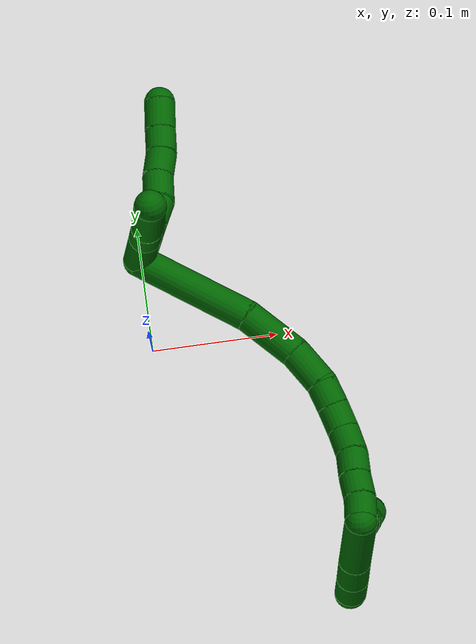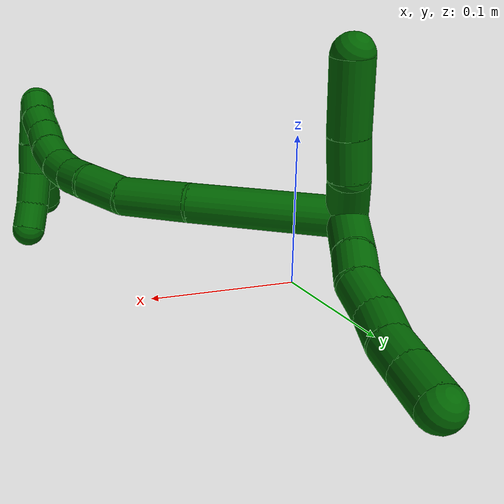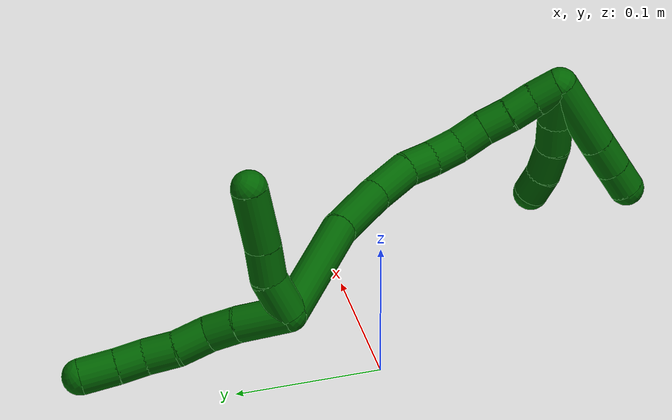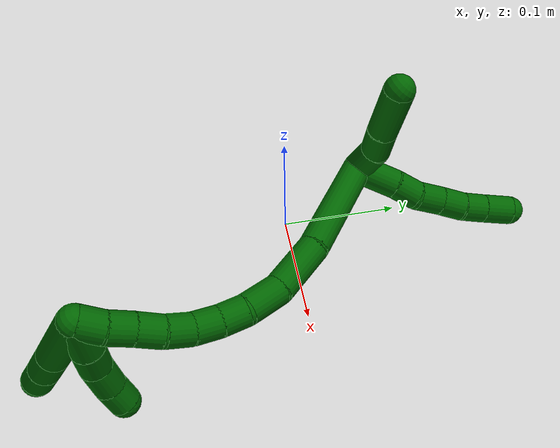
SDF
<sdf version="1.7">
 <world name="default">
  <model name="6">
   <static>0</static>
   <link name="6">
    <collision name="collision-cylinder-e_1_2_8">
     <pose>0.00503 0.016662 0.005199 -1.26833 0.280594 -0.207004</pose>
     <geometry><cylinder><radius>0.0125</radius><length>0.036331</length></cylinder></geometry>
     <surface>
      <friction><ode><mu>1.16</mu><mu2>1.16</mu2><slip1>0</slip1><slip2>0</slip2></ode></friction>
      <contact><ode><kp>1e+06</kp><kd>1</kd><max_vel>0</max_vel><min_depth>0.001</min_depth></ode></contact>
     </surface>
    </collision>
    <visual name="visual-cylinder-e_1_2_8">
     <pose>0.00503 0.016662 0.005199 -1.26833 0.280594 -0.207004</pose>
     <geometry><cylinder><radius>0.0125</radius><length>0.036331</length></cylinder></geometry>
     <material><ambient>0 0.392157 0.003922 1</ambient></material>
    </visual>
    <collision name="collision-cylinder-e_2_8_9">
     <pose>0.012926 0.043748 0.012328 -1.38774 0.263948 -0.219961</pose>
     <geometry><cylinder><radius>0.0125</radius><length>0.021961</length></cylinder></geometry>
     <surface>
      <friction><ode><mu>1.16</mu><mu2>1.16</mu2><slip1>0</slip1><slip2>0</slip2></ode></friction>
      <contact><ode><kp>1e+06</kp><kd>1</kd><max_vel>0</max_vel><min_depth>0.001</min_depth></ode></contact>
     </surface>
    </collision>
    <visual name="visual-cylinder-e_2_8_9">
     <pose>0.012926 0.043748 0.012328 -1.38774 0.263948 -0.219961</pose>
     <geometry><cylinder><radius>0.0125</radius><length>0.021961</length></cylinder></geometry>
     <material><ambient>0 0.392157 0.003922 1</ambient></material>
    </visual>
    <collision name="collision-cylinder-e_3_9_10">
     <pose>0.015431 0.065604 0.017733 -1.27569 -0.030062 0.022283</pose>
     <geometry><cylinder><radius>0.0125</radius><length>0.023911</length></cylinder></geometry>
     <surface>
      <friction><ode><mu>1.16</mu><mu2>1.16</mu2><slip1>0</slip1><slip2>0</slip2></ode></friction>
      <contact><ode><kp>1e+06</kp><kd>1</kd><max_vel>0</max_vel><min_depth>0.001</min_depth></ode></contact>
     </surface>
    </collision>
    <visual name="visual-cylinder-e_3_9_10">
     <pose>0.015431 0.065604 0.017733 -1.27569 -0.030062 0.022283</pose>
     <geometry><cylinder><radius>0.0125</radius><length>0.023911</length></cylinder></geometry>
     <material><ambient>0 0.392157 0.003922 1</ambient></material>
    </visual>
    <collision name="collision-cylinder-e_4_10_11">
     <pose>0.016715 0.087096 0.025211 -1.19205 0.15062 -0.102272</pose>
     <geometry><cylinder><radius>0.0125</radius><length>0.021898</length></cylinder></geometry>
     <surface>
      <friction><ode><mu>1.16</mu><mu2>1.16</mu2><slip1>0</slip1><slip2>0</slip2></ode></friction>
      <contact><ode><kp>1e+06</kp><kd>1</kd><max_vel>0</max_vel><min_depth>0.001</min_depth></ode></contact>
     </surface>
    </collision>
    <visual name="visual-cylinder-e_4_10_11">
     <pose>0.016715 0.087096 0.025211 -1.19205 0.15062 -0.102272</pose>
     <geometry><cylinder><radius>0.0125</radius><length>0.021898</length></cylinder></geometry>
     <material><ambient>0 0.392157 0.003922 1</ambient></material>
    </visual>
    <collision name="collision-cylinder-e_5_11_12">
     <pose>0.018215 0.106305 0.033586 -1.12517 -0.014058 0.008865</pose>
     <geometry><cylinder><radius>0.0125</radius><length>0.020286</length></cylinder></geometry>
     <surface>
      <friction><ode><mu>1.16</mu><mu2>1.16</mu2><slip1>0</slip1><slip2>0</slip2></ode></friction>
      <contact><ode><kp>1e+06</kp><kd>1</kd><max_vel>0</max_vel><min_depth>0.001</min_depth></ode></contact>
     </surface>
    </collision>
    <visual name="visual-cylinder-e_5_11_12">
     <pose>0.018215 0.106305 0.033586 -1.12517 -0.014058 0.008865</pose>
     <geometry><cylinder><radius>0.0125</radius><length>0.020286</length></cylinder></geometry>
     <material><ambient>0 0.392157 0.003922 1</ambient></material>
    </visual>
    <collision name="collision-cylinder-e_6_12_6">
     <pose>0.018247 0.126749 0.043996 -1.07968 0.013678 -0.008196</pose>
     <geometry><cylinder><radius>0.0125</radius><length>0.025614</length></cylinder></geometry>
     <surface>
      <friction><ode><mu>1.16</mu><mu2>1.16</mu2><slip1>0</slip1><slip2>0</slip2></ode></friction>
      <contact><ode><kp>1e+06</kp><kd>1</kd><max_vel>0</max_vel><min_depth>0.001</min_depth></ode></contact>
     </surface>
    </collision>
    <visual name="visual-cylinder-e_6_12_6">
     <pose>0.018247 0.126749 0.043996 -1.07968 0.013678 -0.008196</pose>
     <geometry><cylinder><radius>0.0125</radius><length>0.025614</length></cylinder></geometry>
     <material><ambient>0 0.392157 0.003922 1</ambient></material>
    </visual>
    <collision name="collision-cylinder-e_1_2_13">
     <pose>0.004694 -0.003477 0.013563 0.250961 0.323497 0.041161</pose>
     <geometry><cylinder><radius>0.0125</radius><length>0.029535</length></cylinder></geometry>
     <surface>
      <friction><ode><mu>1.16</mu><mu2>1.16</mu2><slip1>0</slip1><slip2>0</slip2></ode></friction>
      <contact><ode><kp>1e+06</kp><kd>1</kd><max_vel>0</max_vel><min_depth>0.001</min_depth></ode></contact>
     </surface>
    </collision>
    <visual name="visual-cylinder-e_1_2_13">
     <pose>0.004694 -0.003477 0.013563 0.250961 0.323497 0.041161</pose>
     <geometry><cylinder><radius>0.0125</radius><length>0.029535</length></cylinder></geometry>
     <material><ambient>0 0.392157 0.003922 1</ambient></material>
    </visual>
    <collision name="collision-cylinder-e_2_13_14">
     <pose>0.012427 -0.013817 0.037403 0.588794 0.24111 0.07343</pose>
     <geometry><cylinder><radius>0.0125</radius><length>0.025453</length></cylinder></geometry>
     <surface>
      <friction><ode><mu>1.16</mu><mu2>1.16</mu2><slip1>0</slip1><slip2>0</slip2></ode></friction>
      <contact><ode><kp>1e+06</kp><kd>1</kd><max_vel>0</max_vel><min_depth>0.001</min_depth></ode></contact>
     </surface>
    </collision>
    <visual name="visual-cylinder-e_2_13_14">
     <pose>0.012427 -0.013817 0.037403 0.588794 0.24111 0.07343</pose>
     <geometry><cylinder><radius>0.0125</radius><length>0.025453</length></cylinder></geometry>
     <material><ambient>0 0.392157 0.003922 1</ambient></material>
    </visual>
    <collision name="collision-cylinder-e_3_14_5">
     <pose>0.020185 -0.031839 0.066647 0.531769 0.211221 0.057721</pose>
     <geometry><cylinder><radius>0.0125</radius><length>0.045013</length></cylinder></geometry>
     <surface>
      <friction><ode><mu>1.16</mu><mu2>1.16</mu2><slip1>0</slip1><slip2>0</slip2></ode></friction>
      <contact><ode><kp>1e+06</kp><kd>1</kd><max_vel>0</max_vel><min_depth>0.001</min_depth></ode></contact>
     </surface>
    </collision>
    <visual name="visual-cylinder-e_3_14_5">
     <pose>0.020185 -0.031839 0.066647 0.531769 0.211221 0.057721</pose>
     <geometry><cylinder><radius>0.0125</radius><length>0.045013</length></cylinder></geometry>
     <material><ambient>0 0.392157 0.003922 1</ambient></material>
    </visual>
    <collision name="collision-cylinder-e_1_2_15">
     <pose>0.040548 -0.016899 -0.019022 2.41523 1.0104 1.93751</pose>
     <geometry><cylinder><radius>0.0125</radius><length>0.09574</length></cylinder></geometry>
     <surface>
      <friction><ode><mu>1.16</mu><mu2>1.16</mu2><slip1>0</slip1><slip2>0</slip2></ode></friction>
      <contact><ode><kp>1e+06</kp><kd>1</kd><max_vel>0</max_vel><min_depth>0.001</min_depth></ode></contact>
     </surface>
    </collision>
    <visual name="visual-cylinder-e_1_2_15">
     <pose>0.040548 -0.016899 -0.019022 2.41523 1.0104 1.93751</pose>
     <geometry><cylinder><radius>0.0125</radius><length>0.09574</length></cylinder></geometry>
     <material><ambient>0 0.392157 0.003922 1</ambient></material>
    </visual>
    <collision name="collision-cylinder-e_2_15_16">
     <pose>0.098345 -0.04432 -0.05012 2.42484 0.822417 1.72228</pose>
     <geometry><cylinder><radius>0.0125</radius><length>0.047079</length></cylinder></geometry>
     <surface>
      <friction><ode><mu>1.16</mu><mu2>1.16</mu2><slip1>0</slip1><slip2>0</slip2></ode></friction>
      <contact><ode><kp>1e+06</kp><kd>1</kd><max_vel>0</max_vel><min_depth>0.001</min_depth></ode></contact>
     </surface>
    </collision>
    <visual name="visual-cylinder-e_2_15_16">
     <pose>0.098345 -0.04432 -0.05012 2.42484 0.822417 1.72228</pose>
     <geometry><cylinder><radius>0.0125</radius><length>0.047079</length></cylinder></geometry>
     <material><ambient>0 0.392157 0.003922 1</ambient></material>
    </visual>
    <collision name="collision-cylinder-e_3_16_17">
     <pose>0.125069 -0.065719 -0.069623 2.16989 0.623617 1.09604</pose>
     <geometry><cylinder><radius>0.0125</radius><length>0.032449</length></cylinder></geometry>
     <surface>
      <friction><ode><mu>1.16</mu><mu2>1.16</mu2><slip1>0</slip1><slip2>0</slip2></ode></friction>
      <contact><ode><kp>1e+06</kp><kd>1</kd><max_vel>0</max_vel><min_depth>0.001</min_depth></ode></contact>
     </surface>
    </collision>
    <visual name="visual-cylinder-e_3_16_17">
     <pose>0.125069 -0.065719 -0.069623 2.16989 0.623617 1.09604</pose>
     <geometry><cylinder><radius>0.0125</radius><length>0.032449</length></cylinder></geometry>
     <material><ambient>0 0.392157 0.003922 1</ambient></material>
    </visual>
    <collision name="collision-cylinder-e_4_17_18">
     <pose>0.138258 -0.084038 -0.083316 2.27065 0.364658 0.754602</pose>
     <geometry><cylinder><radius>0.0125</radius><length>0.020827</length></cylinder></geometry>
     <surface>
      <friction><ode><mu>1.16</mu><mu2>1.16</mu2><slip1>0</slip1><slip2>0</slip2></ode></friction>
      <contact><ode><kp>1e+06</kp><kd>1</kd><max_vel>0</max_vel><min_depth>0.001</min_depth></ode></contact>
     </surface>
    </collision>
    <visual name="visual-cylinder-e_4_17_18">
     <pose>0.138258 -0.084038 -0.083316 2.27065 0.364658 0.754602</pose>
     <geometry><cylinder><radius>0.0125</radius><length>0.020827</length></cylinder></geometry>
     <material><ambient>0 0.392157 0.003922 1</ambient></material>
    </visual>
    <collision name="collision-cylinder-e_5_18_19">
     <pose>0.145407 -0.100101 -0.094846 2.11894 0.327857 0.573357</pose>
     <geometry><cylinder><radius>0.0125</radius><length>0.021338</length></cylinder></geometry>
     <surface>
      <friction><ode><mu>1.16</mu><mu2>1.16</mu2><slip1>0</slip1><slip2>0</slip2></ode></friction>
      <contact><ode><kp>1e+06</kp><kd>1</kd><max_vel>0</max_vel><min_depth>0.001</min_depth></ode></contact>
     </surface>
    </collision>
    <visual name="visual-cylinder-e_5_18_19">
     <pose>0.145407 -0.100101 -0.094846 2.11894 0.327857 0.573357</pose>
     <geometry><cylinder><radius>0.0125</radius><length>0.021338</length></cylinder></geometry>
     <material><ambient>0 0.392157 0.003922 1</ambient></material>
    </visual>
    <collision name="collision-cylinder-e_6_19_20">
     <pose>0.151628 -0.118572 -0.103273 1.8815 0.262938 0.358785</pose>
     <geometry><cylinder><radius>0.0125</radius><length>0.021428</length></cylinder></geometry>
     <surface>
      <friction><ode><mu>1.16</mu><mu2>1.16</mu2><slip1>0</slip1><slip2>0</slip2></ode></friction>
      <contact><ode><kp>1e+06</kp><kd>1</kd><max_vel>0</max_vel><min_depth>0.001</min_depth></ode></contact>
     </surface>
    </collision>
    <visual name="visual-cylinder-e_6_19_20">
     <pose>0.151628 -0.118572 -0.103273 1.8815 0.262938 0.358785</pose>
     <geometry><cylinder><radius>0.0125</radius><length>0.021428</length></cylinder></geometry>
     <material><ambient>0 0.392157 0.003922 1</ambient></material>
    </visual>
    <collision name="collision-cylinder-e_7_20_21">
     <pose>0.155116 -0.13827 -0.109398 1.86301 0.068295 0.091834</pose>
     <geometry><cylinder><radius>0.0125</radius><length>0.020614</length></cylinder></geometry>
     <surface>
      <friction><ode><mu>1.16</mu><mu2>1.16</mu2><slip1>0</slip1><slip2>0</slip2></ode></friction>
      <contact><ode><kp>1e+06</kp><kd>1</kd><max_vel>0</max_vel><min_depth>0.001</min_depth></ode></contact>
     </surface>
    </collision>
    <visual name="visual-cylinder-e_7_20_21">
     <pose>0.155116 -0.13827 -0.109398 1.86301 0.068295 0.091834</pose>
     <geometry><cylinder><radius>0.0125</radius><length>0.020614</length></cylinder></geometry>
     <material><ambient>0 0.392157 0.003922 1</ambient></material>
    </visual>
    <collision name="collision-cylinder-e_8_21_22">
     <pose>0.157412 -0.15784 -0.114893 1.82567 0.157212 0.203139</pose>
     <geometry><cylinder><radius>0.0125</radius><length>0.020346</length></cylinder></geometry>
     <surface>
      <friction><ode><mu>1.16</mu><mu2>1.16</mu2><slip1>0</slip1><slip2>0</slip2></ode></friction>
      <contact><ode><kp>1e+06</kp><kd>1</kd><max_vel>0</max_vel><min_depth>0.001</min_depth></ode></contact>
     </surface>
    </collision>
    <visual name="visual-cylinder-e_8_21_22">
     <pose>0.157412 -0.15784 -0.114893 1.82567 0.157212 0.203139</pose>
     <geometry><cylinder><radius>0.0125</radius><length>0.020346</length></cylinder></geometry>
     <material><ambient>0 0.392157 0.003922 1</ambient></material>
    </visual>
    <collision name="collision-cylinder-e_9_22_1">
     <pose>0.159027 -0.17746 -0.119389 1.76654 0.002209 0.00269</pose>
     <geometry><cylinder><radius>0.0125</radius><length>0.020178</length></cylinder></geometry>
     <surface>
      <friction><ode><mu>1.16</mu><mu2>1.16</mu2><slip1>0</slip1><slip2>0</slip2></ode></friction>
      <contact><ode><kp>1e+06</kp><kd>1</kd><max_vel>0</max_vel><min_depth>0.001</min_depth></ode></contact>
     </surface>
    </collision>
    <visual name="visual-cylinder-e_9_22_1">
     <pose>0.159027 -0.17746 -0.119389 1.76654 0.002209 0.00269</pose>
     <geometry><cylinder><radius>0.0125</radius><length>0.020178</length></cylinder></geometry>
     <material><ambient>0 0.392157 0.003922 1</ambient></material>
    </visual>
    <collision name="collision-cylinder-e_1_1_23">
     <pose>0.158715 -0.176347 -0.132647 -2.36901 -0.021193 0.052096</pose>
     <geometry><cylinder><radius>0.0125</radius><length>0.031554</length></cylinder></geometry>
     <surface>
      <friction><ode><mu>1.16</mu><mu2>1.16</mu2><slip1>0</slip1><slip2>0</slip2></ode></friction>
      <contact><ode><kp>1e+06</kp><kd>1</kd><max_vel>0</max_vel><min_depth>0.001</min_depth></ode></contact>
     </surface>
    </collision>
    <visual name="visual-cylinder-e_1_1_23">
     <pose>0.158715 -0.176347 -0.132647 -2.36901 -0.021193 0.052096</pose>
     <geometry><cylinder><radius>0.0125</radius><length>0.031554</length></cylinder></geometry>
     <material><ambient>0 0.392157 0.003922 1</ambient></material>
    </visual>
    <collision name="collision-cylinder-e_2_23_24">
     <pose>0.157561 -0.157572 -0.152416 -2.39981 -0.071178 0.182595</pose>
     <geometry><cylinder><radius>0.0125</radius><length>0.023044</length></cylinder></geometry>
     <surface>
      <friction><ode><mu>1.16</mu><mu2>1.16</mu2><slip1>0</slip1><slip2>0</slip2></ode></friction>
      <contact><ode><kp>1e+06</kp><kd>1</kd><max_vel>0</max_vel><min_depth>0.001</min_depth></ode></contact>
     </surface>
    </collision>
    <visual name="visual-cylinder-e_2_23_24">
     <pose>0.157561 -0.157572 -0.152416 -2.39981 -0.071178 0.182595</pose>
     <geometry><cylinder><radius>0.0125</radius><length>0.023044</length></cylinder></geometry>
     <material><ambient>0 0.392157 0.003922 1</ambient></material>
    </visual>
    <collision name="collision-cylinder-e_3_24_25">
     <pose>0.15711 -0.13982 -0.168381 -2.2144 0.029457 -0.058909</pose>
     <geometry><cylinder><radius>0.0125</radius><length>0.024982</length></cylinder></geometry>
     <surface>
      <friction><ode><mu>1.16</mu><mu2>1.16</mu2><slip1>0</slip1><slip2>0</slip2></ode></friction>
      <contact><ode><kp>1e+06</kp><kd>1</kd><max_vel>0</max_vel><min_depth>0.001</min_depth></ode></contact>
     </surface>
    </collision>
    <visual name="visual-cylinder-e_3_24_25">
     <pose>0.15711 -0.13982 -0.168381 -2.2144 0.029457 -0.058909</pose>
     <geometry><cylinder><radius>0.0125</radius><length>0.024982</length></cylinder></geometry>
     <material><ambient>0 0.392157 0.003922 1</ambient></material>
    </visual>
    <collision name="collision-cylinder-e_4_25_4">
     <pose>0.158649 -0.120875 -0.180632 -2.05909 0.114972 -0.190888</pose>
     <geometry><cylinder><radius>0.0125</radius><length>0.02042</length></cylinder></geometry>
     <surface>
      <friction><ode><mu>1.16</mu><mu2>1.16</mu2><slip1>0</slip1><slip2>0</slip2></ode></friction>
      <contact><ode><kp>1e+06</kp><kd>1</kd><max_vel>0</max_vel><min_depth>0.001</min_depth></ode></contact>
     </surface>
    </collision>
    <visual name="visual-cylinder-e_4_25_4">
     <pose>0.158649 -0.120875 -0.180632 -2.05909 0.114972 -0.190888</pose>
     <geometry><cylinder><radius>0.0125</radius><length>0.02042</length></cylinder></geometry>
     <material><ambient>0 0.392157 0.003922 1</ambient></material>
    </visual>
    <collision name="collision-cylinder-e_1_1_26">
     <pose>0.153647 -0.181775 -0.147902 -2.93438 -0.196537 1.51754</pose>
     <geometry><cylinder><radius>0.0125</radius><length>0.055328</length></cylinder></geometry>
     <surface>
      <friction><ode><mu>1.16</mu><mu2>1.16</mu2><slip1>0</slip1><slip2>0</slip2></ode></friction>
      <contact><ode><kp>1e+06</kp><kd>1</kd><max_vel>0</max_vel><min_depth>0.001</min_depth></ode></contact>
     </surface>
    </collision>
    <visual name="visual-cylinder-e_1_1_26">
     <pose>0.153647 -0.181775 -0.147902 -2.93438 -0.196537 1.51754</pose>
     <geometry><cylinder><radius>0.0125</radius><length>0.055328</length></cylinder></geometry>
     <material><ambient>0 0.392157 0.003922 1</ambient></material>
    </visual>
    <collision name="collision-cylinder-e_2_26_27">
     <pose>0.146054 -0.173838 -0.186215 -2.94399 -0.180657 1.48074</pose>
     <geometry><cylinder><radius>0.0125</radius><length>0.024388</length></cylinder></geometry>
     <surface>
      <friction><ode><mu>1.16</mu><mu2>1.16</mu2><slip1>0</slip1><slip2>0</slip2></ode></friction>
      <contact><ode><kp>1e+06</kp><kd>1</kd><max_vel>0</max_vel><min_depth>0.001</min_depth></ode></contact>
     </surface>
    </collision>
    <visual name="visual-cylinder-e_2_26_27">
     <pose>0.146054 -0.173838 -0.186215 -2.94399 -0.180657 1.48074</pose>
     <geometry><cylinder><radius>0.0125</radius><length>0.024388</length></cylinder></geometry>
     <material><ambient>0 0.392157 0.003922 1</ambient></material>
    </visual>
    <collision name="collision-cylinder-e_3_27_3">
     <pose>0.141864 -0.169577 -0.207736 -2.94875 -0.198419 1.5995</pose>
     <geometry><cylinder><radius>0.0125</radius><length>0.020284</length></cylinder></geometry>
     <surface>
      <friction><ode><mu>1.16</mu><mu2>1.16</mu2><slip1>0</slip1><slip2>0</slip2></ode></friction>
      <contact><ode><kp>1e+06</kp><kd>1</kd><max_vel>0</max_vel><min_depth>0.001</min_depth></ode></contact>
     </surface>
    </collision>
    <visual name="visual-cylinder-e_3_27_3">
     <pose>0.141864 -0.169577 -0.207736 -2.94875 -0.198419 1.5995</pose>
     <geometry><cylinder><radius>0.0125</radius><length>0.020284</length></cylinder></geometry>
     <material><ambient>0 0.392157 0.003922 1</ambient></material>
    </visual>
    <collision name="collision-sphere-3">
     <pose>0.139865 -0.167672 -0.217495 0 -0 0</pose>
     <geometry><sphere><radius>0.0125</radius></sphere></geometry>
     <surface>
      <friction><ode><mu>1.16</mu><mu2>1.16</mu2><slip1>0</slip1><slip2>0</slip2></ode></friction>
      <contact><ode><kp>1e+06</kp><kd>1</kd><max_vel>0</max_vel><min_depth>0.001</min_depth></ode></contact>
     </surface>
    </collision>
    <visual name="visual-sphere-3">
     <pose>0.139865 -0.167672 -0.217495 0 -0 0</pose>
     <geometry><sphere><radius>0.0125</radius></sphere></geometry>
     <material><ambient>0 0.392157 0.003922 1</ambient></material>
    </visual>
    <collision name="collision-sphere-27">
     <pose>0.143863 -0.171483 -0.197977 0 -0 0</pose>
     <geometry><sphere><radius>0.0125</radius></sphere></geometry>
     <surface>
      <friction><ode><mu>1.16</mu><mu2>1.16</mu2><slip1>0</slip1><slip2>0</slip2></ode></friction>
      <contact><ode><kp>1e+06</kp><kd>1</kd><max_vel>0</max_vel><min_depth>0.001</min_depth></ode></contact>
     </surface>
    </collision>
    <visual name="visual-sphere-27">
     <pose>0.143863 -0.171483 -0.197977 0 -0 0</pose>
     <geometry><sphere><radius>0.0125</radius></sphere></geometry>
     <material><ambient>0 0.392157 0.003922 1</ambient></material>
    </visual>
    <collision name="collision-sphere-26">
     <pose>0.148245 -0.176193 -0.174453 0 -0 0</pose>
     <geometry><sphere><radius>0.0125</radius></sphere></geometry>
     <surface>
      <friction><ode><mu>1.16</mu><mu2>1.16</mu2><slip1>0</slip1><slip2>0</slip2></ode></friction>
      <contact><ode><kp>1e+06</kp><kd>1</kd><max_vel>0</max_vel><min_depth>0.001</min_depth></ode></contact>
     </surface>
    </collision>
    <visual name="visual-sphere-26">
     <pose>0.148245 -0.176193 -0.174453 0 -0 0</pose>
     <geometry><sphere><radius>0.0125</radius></sphere></geometry>
     <material><ambient>0 0.392157 0.003922 1</ambient></material>
    </visual>
    <collision name="collision-sphere-4">
     <pose>0.15982 -0.111918 -0.18539 0 -0 0</pose>
     <geometry><sphere><radius>0.0125</radius></sphere></geometry>
     <surface>
      <friction><ode><mu>1.16</mu><mu2>1.16</mu2><slip1>0</slip1><slip2>0</slip2></ode></friction>
      <contact><ode><kp>1e+06</kp><kd>1</kd><max_vel>0</max_vel><min_depth>0.001</min_depth></ode></contact>
     </surface>
    </collision>
    <visual name="visual-sphere-4">
     <pose>0.15982 -0.111918 -0.18539 0 -0 0</pose>
     <geometry><sphere><radius>0.0125</radius></sphere></geometry>
     <material><ambient>0 0.392157 0.003922 1</ambient></material>
    </visual>
    <collision name="collision-sphere-25">
     <pose>0.157478 -0.129833 -0.175873 0 -0 0</pose>
     <geometry><sphere><radius>0.0125</radius></sphere></geometry>
     <surface>
      <friction><ode><mu>1.16</mu><mu2>1.16</mu2><slip1>0</slip1><slip2>0</slip2></ode></friction>
      <contact><ode><kp>1e+06</kp><kd>1</kd><max_vel>0</max_vel><min_depth>0.001</min_depth></ode></contact>
     </surface>
    </collision>
    <visual name="visual-sphere-25">
     <pose>0.157478 -0.129833 -0.175873 0 -0 0</pose>
     <geometry><sphere><radius>0.0125</radius></sphere></geometry>
     <material><ambient>0 0.392157 0.003922 1</ambient></material>
    </visual>
    <collision name="collision-sphere-24">
     <pose>0.156742 -0.149808 -0.160889 0 -0 0</pose>
     <geometry><sphere><radius>0.0125</radius></sphere></geometry>
     <surface>
      <friction><ode><mu>1.16</mu><mu2>1.16</mu2><slip1>0</slip1><slip2>0</slip2></ode></friction>
      <contact><ode><kp>1e+06</kp><kd>1</kd><max_vel>0</max_vel><min_depth>0.001</min_depth></ode></contact>
     </surface>
    </collision>
    <visual name="visual-sphere-24">
     <pose>0.156742 -0.149808 -0.160889 0 -0 0</pose>
     <geometry><sphere><radius>0.0125</radius></sphere></geometry>
     <material><ambient>0 0.392157 0.003922 1</ambient></material>
    </visual>
    <collision name="collision-sphere-23">
     <pose>0.158381 -0.165337 -0.143943 0 -0 0</pose>
     <geometry><sphere><radius>0.0125</radius></sphere></geometry>
     <surface>
      <friction><ode><mu>1.16</mu><mu2>1.16</mu2><slip1>0</slip1><slip2>0</slip2></ode></friction>
      <contact><ode><kp>1e+06</kp><kd>1</kd><max_vel>0</max_vel><min_depth>0.001</min_depth></ode></contact>
     </surface>
    </collision>
    <visual name="visual-sphere-23">
     <pose>0.158381 -0.165337 -0.143943 0 -0 0</pose>
     <geometry><sphere><radius>0.0125</radius></sphere></geometry>
     <material><ambient>0 0.392157 0.003922 1</ambient></material>
    </visual>
    <collision name="collision-sphere-1">
     <pose>0.159049 -0.187356 -0.121351 0 -0 0</pose>
     <geometry><sphere><radius>0.0125</radius></sphere></geometry>
     <surface>
      <friction><ode><mu>1.16</mu><mu2>1.16</mu2><slip1>0</slip1><slip2>0</slip2></ode></friction>
      <contact><ode><kp>1e+06</kp><kd>1</kd><max_vel>0</max_vel><min_depth>0.001</min_depth></ode></contact>
     </surface>
    </collision>
    <visual name="visual-sphere-1">
     <pose>0.159049 -0.187356 -0.121351 0 -0 0</pose>
     <geometry><sphere><radius>0.0125</radius></sphere></geometry>
     <material><ambient>0 0.392157 0.003922 1</ambient></material>
    </visual>
    <collision name="collision-sphere-22">
     <pose>0.159005 -0.167563 -0.117427 0 -0 0</pose>
     <geometry><sphere><radius>0.0125</radius></sphere></geometry>
     <surface>
      <friction><ode><mu>1.16</mu><mu2>1.16</mu2><slip1>0</slip1><slip2>0</slip2></ode></friction>
      <contact><ode><kp>1e+06</kp><kd>1</kd><max_vel>0</max_vel><min_depth>0.001</min_depth></ode></contact>
     </surface>
    </collision>
    <visual name="visual-sphere-22">
     <pose>0.159005 -0.167563 -0.117427 0 -0 0</pose>
     <geometry><sphere><radius>0.0125</radius></sphere></geometry>
     <material><ambient>0 0.392157 0.003922 1</ambient></material>
    </visual>
    <collision name="collision-sphere-21">
     <pose>0.155819 -0.148117 -0.11236 0 -0 0</pose>
     <geometry><sphere><radius>0.0125</radius></sphere></geometry>
     <surface>
      <friction><ode><mu>1.16</mu><mu2>1.16</mu2><slip1>0</slip1><slip2>0</slip2></ode></friction>
      <contact><ode><kp>1e+06</kp><kd>1</kd><max_vel>0</max_vel><min_depth>0.001</min_depth></ode></contact>
     </surface>
    </collision>
    <visual name="visual-sphere-21">
     <pose>0.155819 -0.148117 -0.11236 0 -0 0</pose>
     <geometry><sphere><radius>0.0125</radius></sphere></geometry>
     <material><ambient>0 0.392157 0.003922 1</ambient></material>
    </visual>
    <collision name="collision-sphere-12">
     <pose>0.018072 0.115456 0.037957 0 -0 0</pose>
     <geometry><sphere><radius>0.0125</radius></sphere></geometry>
     <surface>
      <friction><ode><mu>1.16</mu><mu2>1.16</mu2><slip1>0</slip1><slip2>0</slip2></ode></friction>
      <contact><ode><kp>1e+06</kp><kd>1</kd><max_vel>0</max_vel><min_depth>0.001</min_depth></ode></contact>
     </surface>
    </collision>
    <visual name="visual-sphere-12">
     <pose>0.018072 0.115456 0.037957 0 -0 0</pose>
     <geometry><sphere><radius>0.0125</radius></sphere></geometry>
     <material><ambient>0 0.392157 0.003922 1</ambient></material>
    </visual>
    <collision name="collision-sphere-11">
     <pose>0.018357 0.097153 0.029214 0 -0 0</pose>
     <geometry><sphere><radius>0.0125</radius></sphere></geometry>
     <surface>
      <friction><ode><mu>1.16</mu><mu2>1.16</mu2><slip1>0</slip1><slip2>0</slip2></ode></friction>
      <contact><ode><kp>1e+06</kp><kd>1</kd><max_vel>0</max_vel><min_depth>0.001</min_depth></ode></contact>
     </surface>
    </collision>
    <visual name="visual-sphere-11">
     <pose>0.018357 0.097153 0.029214 0 -0 0</pose>
     <geometry><sphere><radius>0.0125</radius></sphere></geometry>
     <material><ambient>0 0.392157 0.003922 1</ambient></material>
    </visual>
    <collision name="collision-sphere-10">
     <pose>0.015072 0.077038 0.021209 0 -0 0</pose>
     <geometry><sphere><radius>0.0125</radius></sphere></geometry>
     <surface>
      <friction><ode><mu>1.16</mu><mu2>1.16</mu2><slip1>0</slip1><slip2>0</slip2></ode></friction>
      <contact><ode><kp>1e+06</kp><kd>1</kd><max_vel>0</max_vel><min_depth>0.001</min_depth></ode></contact>
     </surface>
    </collision>
    <visual name="visual-sphere-10">
     <pose>0.015072 0.077038 0.021209 0 -0 0</pose>
     <geometry><sphere><radius>0.0125</radius></sphere></geometry>
     <material><ambient>0 0.392157 0.003922 1</ambient></material>
    </visual>
    <collision name="collision-sphere-9">
     <pose>0.01579 0.054171 0.014258 0 -0 0</pose>
     <geometry><sphere><radius>0.0125</radius></sphere></geometry>
     <surface>
      <friction><ode><mu>1.16</mu><mu2>1.16</mu2><slip1>0</slip1><slip2>0</slip2></ode></friction>
      <contact><ode><kp>1e+06</kp><kd>1</kd><max_vel>0</max_vel><min_depth>0.001</min_depth></ode></contact>
     </surface>
    </collision>
    <visual name="visual-sphere-9">
     <pose>0.01579 0.054171 0.014258 0 -0 0</pose>
     <geometry><sphere><radius>0.0125</radius></sphere></geometry>
     <material><ambient>0 0.392157 0.003922 1</ambient></material>
    </visual>
    <collision name="collision-sphere-2">
     <geometry><sphere><radius>0.0125</radius></sphere></geometry>
     <surface>
      <friction><ode><mu>1.16</mu><mu2>1.16</mu2><slip1>0</slip1><slip2>0</slip2></ode></friction>
      <contact><ode><kp>1e+06</kp><kd>1</kd><max_vel>0</max_vel><min_depth>0.001</min_depth></ode></contact>
     </surface>
    </collision>
    <visual name="visual-sphere-2">
     <geometry><sphere><radius>0.0125</radius></sphere></geometry>
     <material><ambient>0 0.392157 0.003922 1</ambient></material>
    </visual>
    <collision name="collision-sphere-19">
     <pose>0.148843 -0.108722 -0.10011 0 -0 0</pose>
     <geometry><sphere><radius>0.0125</radius></sphere></geometry>
     <surface>
      <friction><ode><mu>1.16</mu><mu2>1.16</mu2><slip1>0</slip1><slip2>0</slip2></ode></friction>
      <contact><ode><kp>1e+06</kp><kd>1</kd><max_vel>0</max_vel><min_depth>0.001</min_depth></ode></contact>
     </surface>
    </collision>
    <visual name="visual-sphere-19">
     <pose>0.148843 -0.108722 -0.10011 0 -0 0</pose>
     <geometry><sphere><radius>0.0125</radius></sphere></geometry>
     <material><ambient>0 0.392157 0.003922 1</ambient></material>
    </visual>
    <collision name="collision-sphere-8">
     <pose>0.010061 0.033325 0.010399 0 -0 0</pose>
     <geometry><sphere><radius>0.0125</radius></sphere></geometry>
     <surface>
      <friction><ode><mu>1.16</mu><mu2>1.16</mu2><slip1>0</slip1><slip2>0</slip2></ode></friction>
      <contact><ode><kp>1e+06</kp><kd>1</kd><max_vel>0</max_vel><min_depth>0.001</min_depth></ode></contact>
     </surface>
    </collision>
    <visual name="visual-sphere-8">
     <pose>0.010061 0.033325 0.010399 0 -0 0</pose>
     <geometry><sphere><radius>0.0125</radius></sphere></geometry>
     <material><ambient>0 0.392157 0.003922 1</ambient></material>
    </visual>
    <collision name="collision-sphere-6">
     <pose>0.018423 0.138041 0.050036 0 -0 0</pose>
     <geometry><sphere><radius>0.0125</radius></sphere></geometry>
     <surface>
      <friction><ode><mu>1.16</mu><mu2>1.16</mu2><slip1>0</slip1><slip2>0</slip2></ode></friction>
      <contact><ode><kp>1e+06</kp><kd>1</kd><max_vel>0</max_vel><min_depth>0.001</min_depth></ode></contact>
     </surface>
    </collision>
    <visual name="visual-sphere-6">
     <pose>0.018423 0.138041 0.050036 0 -0 0</pose>
     <geometry><sphere><radius>0.0125</radius></sphere></geometry>
     <material><ambient>0 0.392157 0.003922 1</ambient></material>
    </visual>
    <collision name="collision-sphere-13">
     <pose>0.009389 -0.006954 0.027126 0 -0 0</pose>
     <geometry><sphere><radius>0.0125</radius></sphere></geometry>
     <surface>
      <friction><ode><mu>1.16</mu><mu2>1.16</mu2><slip1>0</slip1><slip2>0</slip2></ode></friction>
      <contact><ode><kp>1e+06</kp><kd>1</kd><max_vel>0</max_vel><min_depth>0.001</min_depth></ode></contact>
     </surface>
    </collision>
    <visual name="visual-sphere-13">
     <pose>0.009389 -0.006954 0.027126 0 -0 0</pose>
     <geometry><sphere><radius>0.0125</radius></sphere></geometry>
     <material><ambient>0 0.392157 0.003922 1</ambient></material>
    </visual>
    <collision name="collision-sphere-14">
     <pose>0.015466 -0.020681 0.04768 0 -0 0</pose>
     <geometry><sphere><radius>0.0125</radius></sphere></geometry>
     <surface>
      <friction><ode><mu>1.16</mu><mu2>1.16</mu2><slip1>0</slip1><slip2>0</slip2></ode></friction>
      <contact><ode><kp>1e+06</kp><kd>1</kd><max_vel>0</max_vel><min_depth>0.001</min_depth></ode></contact>
     </surface>
    </collision>
    <visual name="visual-sphere-14">
     <pose>0.015466 -0.020681 0.04768 0 -0 0</pose>
     <geometry><sphere><radius>0.0125</radius></sphere></geometry>
     <material><ambient>0 0.392157 0.003922 1</ambient></material>
    </visual>
    <collision name="collision-sphere-5">
     <pose>0.024903 -0.042997 0.085615 0 -0 0</pose>
     <geometry><sphere><radius>0.0125</radius></sphere></geometry>
     <surface>
      <friction><ode><mu>1.16</mu><mu2>1.16</mu2><slip1>0</slip1><slip2>0</slip2></ode></friction>
      <contact><ode><kp>1e+06</kp><kd>1</kd><max_vel>0</max_vel><min_depth>0.001</min_depth></ode></contact>
     </surface>
    </collision>
    <visual name="visual-sphere-5">
     <pose>0.024903 -0.042997 0.085615 0 -0 0</pose>
     <geometry><sphere><radius>0.0125</radius></sphere></geometry>
     <material><ambient>0 0.392157 0.003922 1</ambient></material>
    </visual>
    <collision name="collision-sphere-15">
     <pose>0.081096 -0.033797 -0.038044 0 -0 0</pose>
     <geometry><sphere><radius>0.0125</radius></sphere></geometry>
     <surface>
      <friction><ode><mu>1.16</mu><mu2>1.16</mu2><slip1>0</slip1><slip2>0</slip2></ode></friction>
      <contact><ode><kp>1e+06</kp><kd>1</kd><max_vel>0</max_vel><min_depth>0.001</min_depth></ode></contact>
     </surface>
    </collision>
    <visual name="visual-sphere-15">
     <pose>0.081096 -0.033797 -0.038044 0 -0 0</pose>
     <geometry><sphere><radius>0.0125</radius></sphere></geometry>
     <material><ambient>0 0.392157 0.003922 1</ambient></material>
    </visual>
    <collision name="collision-sphere-16">
     <pose>0.115595 -0.054842 -0.062196 0 -0 0</pose>
     <geometry><sphere><radius>0.0125</radius></sphere></geometry>
     <surface>
      <friction><ode><mu>1.16</mu><mu2>1.16</mu2><slip1>0</slip1><slip2>0</slip2></ode></friction>
      <contact><ode><kp>1e+06</kp><kd>1</kd><max_vel>0</max_vel><min_depth>0.001</min_depth></ode></contact>
     </surface>
    </collision>
    <visual name="visual-sphere-16">
     <pose>0.115595 -0.054842 -0.062196 0 -0 0</pose>
     <geometry><sphere><radius>0.0125</radius></sphere></geometry>
     <material><ambient>0 0.392157 0.003922 1</ambient></material>
    </visual>
    <collision name="collision-sphere-17">
     <pose>0.134544 -0.076596 -0.07705 0 -0 0</pose>
     <geometry><sphere><radius>0.0125</radius></sphere></geometry>
     <surface>
      <friction><ode><mu>1.16</mu><mu2>1.16</mu2><slip1>0</slip1><slip2>0</slip2></ode></friction>
      <contact><ode><kp>1e+06</kp><kd>1</kd><max_vel>0</max_vel><min_depth>0.001</min_depth></ode></contact>
     </surface>
    </collision>
    <visual name="visual-sphere-17">
     <pose>0.134544 -0.076596 -0.07705 0 -0 0</pose>
     <geometry><sphere><radius>0.0125</radius></sphere></geometry>
     <material><ambient>0 0.392157 0.003922 1</ambient></material>
    </visual>
    <collision name="collision-sphere-18">
     <pose>0.141972 -0.09148 -0.089583 0 -0 0</pose>
     <geometry><sphere><radius>0.0125</radius></sphere></geometry>
     <surface>
      <friction><ode><mu>1.16</mu><mu2>1.16</mu2><slip1>0</slip1><slip2>0</slip2></ode></friction>
      <contact><ode><kp>1e+06</kp><kd>1</kd><max_vel>0</max_vel><min_depth>0.001</min_depth></ode></contact>
     </surface>
    </collision>
    <visual name="visual-sphere-18">
     <pose>0.141972 -0.09148 -0.089583 0 -0 0</pose>
     <geometry><sphere><radius>0.0125</radius></sphere></geometry>
     <material><ambient>0 0.392157 0.003922 1</ambient></material>
    </visual>
    <collision name="collision-sphere-20">
     <pose>0.154412 -0.128423 -0.106436 0 -0 0</pose>
     <geometry><sphere><radius>0.0125</radius></sphere></geometry>
     <surface>
      <friction><ode><mu>1.16</mu><mu2>1.16</mu2><slip1>0</slip1><slip2>0</slip2></ode></friction>
      <contact><ode><kp>1e+06</kp><kd>1</kd><max_vel>0</max_vel><min_depth>0.001</min_depth></ode></contact>
     </surface>
    </collision>
    <visual name="visual-sphere-20">
     <pose>0.154412 -0.128423 -0.106436 0 -0 0</pose>
     <geometry><sphere><radius>0.0125</radius></sphere></geometry>
     <material><ambient>0 0.392157 0.003922 1</ambient></material>
    </visual>
    <inertial>
     <pose>0.087409 -0.061657 -0.059131 0 -0 0</pose>
     <mass>0.75</mass>
     <inertia>
      <ixx>0.000118</ixx>
      <ixy>0</ixy>
      <ixz>0</ixz>
      <iyy>0.000148</iyy>
      <iyz>0</iyz>
      <izz>-6.6e-05</izz>
     </inertia>
    </inertial>
   </link>
   <pose>-0.000688 0.063069 0.060591 -0.706919 -0.117335 -0.061249</pose>
  </model>
 </world>
</sdf>
